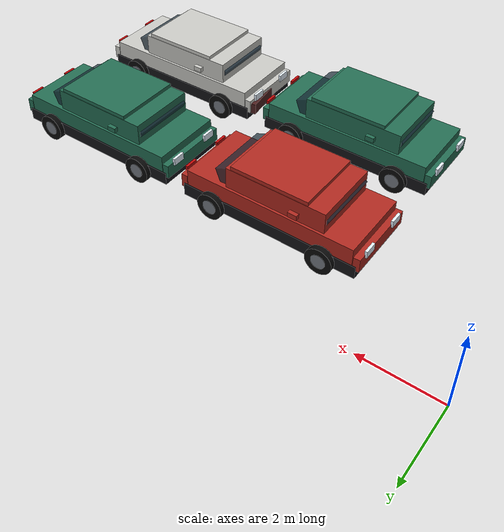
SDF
<sdf version="1.7">
 <world name="ev_car_carrier_deck_world">
  <model name="ev_04">
   <static>true</static>
   <pose>5.0000 -5.4000 0.2000 0.0000 0.0000 0.0000</pose>
   <link name="vehicle">
    <collision name="chassis_collision">
     <pose>0.0000 0.0000 0.4800 0.0000 0.0000 0.0000</pose>
     <geometry><box><size>4.45 1.86 0.32</size></box></geometry>
    </collision>
    <visual name="chassis_visual">
     <pose>0.0000 0.0000 0.4800 0.0000 0.0000 0.0000</pose>
     <geometry><box><size>4.45 1.86 0.32</size></box></geometry>
     <material><ambient>0.08 0.08 0.09 1</ambient><diffuse>0.08 0.08 0.09 1</diffuse></material>
    </visual>
    <collision name="lower_body_collision">
     <pose>0.0000 0.0000 0.7800 0.0000 0.0000 0.0000</pose>
     <geometry><box><size>4.25 1.82 0.55</size></box></geometry>
    </collision>
    <visual name="lower_body_visual">
     <pose>0.0000 0.0000 0.7800 0.0000 0.0000 0.0000</pose>
     <geometry><box><size>4.25 1.82 0.55</size></box></geometry>
     <material><ambient>0.14 0.42 0.32 1</ambient><diffuse>0.14 0.42 0.32 1</diffuse></material>
    </visual>
    <collision name="cabin_collision">
     <pose>-0.1500 0.0000 1.2500 0.0000 0.0000 0.0000</pose>
     <geometry><box><size>2.5 1.7 0.65</size></box></geometry>
    </collision>
    <visual name="cabin_visual">
     <pose>-0.1500 0.0000 1.2500 0.0000 0.0000 0.0000</pose>
     <geometry><box><size>2.5 1.7 0.65</size></box></geometry>
     <material><ambient>0.14 0.42 0.32 1</ambient><diffuse>0.14 0.42 0.32 1</diffuse></material>
    </visual>
    <visual name="windshield_visual">
     <pose>-1.0500 0.0000 1.3000 0.0000 -0.4000 0.0000</pose>
     <geometry><box><size>0.7 1.56 0.42</size></box></geometry>
     <material><ambient>0.1 0.17 0.22 0.75</ambient><diffuse>0.1 0.17 0.22 0.75</diffuse></material>
    </visual>
    <visual name="rear_glass_visual">
     <pose>1.1000 0.0000 1.2800 0.0000 0.3800 0.0000</pose>
     <geometry><box><size>0.55 1.56 0.4</size></box></geometry>
     <material><ambient>0.1 0.17 0.22 0.75</ambient><diffuse>0.1 0.17 0.22 0.75</diffuse></material>
    </visual>
    <collision name="roof_collision">
     <pose>0.0000 0.0000 1.6200 0.0000 0.0000 0.0000</pose>
     <geometry><box><size>1.95 1.68 0.1</size></box></geometry>
    </collision>
    <visual name="roof_visual">
     <pose>0.0000 0.0000 1.6200 0.0000 0.0000 0.0000</pose>
     <geometry><box><size>1.95 1.68 0.1</size></box></geometry>
     <material><ambient>0.14 0.42 0.32 1</ambient><diffuse>0.14 0.42 0.32 1</diffuse></material>
    </visual>
    <collision name="battery_pack_collision">
     <pose>0.1000 0.0000 0.3000 0.0000 0.0000 0.0000</pose>
     <geometry><box><size>2.75 1.45 0.16</size></box></geometry>
    </collision>
    <visual name="battery_pack_visual">
     <pose>0.1000 0.0000 0.3000 0.0000 0.0000 0.0000</pose>
     <geometry><box><size>2.75 1.45 0.16</size></box></geometry>
     <material><ambient>0.16 0.18 0.19 1</ambient><diffuse>0.16 0.18 0.19 1</diffuse></material>
    </visual>
    <collision name="front_bumper_collision">
     <pose>-2.2200 0.0000 0.7000 0.0000 0.0000 0.0000</pose>
     <geometry><box><size>0.16 1.82 0.34</size></box></geometry>
    </collision>
    <visual name="front_bumper_visual">
     <pose>-2.2200 0.0000 0.7000 0.0000 0.0000 0.0000</pose>
     <geometry><box><size>0.16 1.82 0.34</size></box></geometry>
     <material><ambient>0.14 0.42 0.32 1</ambient><diffuse>0.14 0.42 0.32 1</diffuse></material>
    </visual>
    <collision name="rear_bumper_collision">
     <pose>2.2200 0.0000 0.7000 0.0000 0.0000 0.0000</pose>
     <geometry><box><size>0.16 1.82 0.34</size></box></geometry>
    </collision>
    <visual name="rear_bumper_visual">
     <pose>2.2200 0.0000 0.7000 0.0000 0.0000 0.0000</pose>
     <geometry><box><size>0.16 1.82 0.34</size></box></geometry>
     <material><ambient>0.14 0.42 0.32 1</ambient><diffuse>0.14 0.42 0.32 1</diffuse></material>
    </visual>
    <collision name="wheel_0_0_collision">
     <pose>-1.4200 -0.9600 0.4300 1.5708 0.0000 0.0000</pose>
     <geometry><cylinder><radius>0.33</radius><length>0.2</length></cylinder></geometry>
    </collision>
    <visual name="wheel_0_0_visual">
     <pose>-1.4200 -0.9600 0.4300 1.5708 0.0000 0.0000</pose>
     <geometry><cylinder><radius>0.33</radius><length>0.2</length></cylinder></geometry>
     <material><ambient>0.035 0.035 0.035 1</ambient><diffuse>0.035 0.035 0.035 1</diffuse></material>
    </visual>
    <visual name="rim_0_0_visual">
     <pose>-1.4200 -0.9600 0.4300 1.5708 0.0000 0.0000</pose>
     <geometry><cylinder><radius>0.18</radius><length>0.205</length></cylinder></geometry>
     <material><ambient>0.45 0.47 0.5 1</ambient><diffuse>0.45 0.47 0.5 1</diffuse></material>
    </visual>
    <collision name="wheel_0_1_collision">
     <pose>-1.4200 0.9600 0.4300 1.5708 0.0000 0.0000</pose>
     <geometry><cylinder><radius>0.33</radius><length>0.2</length></cylinder></geometry>
    </collision>
    <visual name="wheel_0_1_visual">
     <pose>-1.4200 0.9600 0.4300 1.5708 0.0000 0.0000</pose>
     <geometry><cylinder><radius>0.33</radius><length>0.2</length></cylinder></geometry>
     <material><ambient>0.035 0.035 0.035 1</ambient><diffuse>0.035 0.035 0.035 1</diffuse></material>
    </visual>
    <visual name="rim_0_1_visual">
     <pose>-1.4200 0.9600 0.4300 1.5708 0.0000 0.0000</pose>
     <geometry><cylinder><radius>0.18</radius><length>0.205</length></cylinder></geometry>
     <material><ambient>0.45 0.47 0.5 1</ambient><diffuse>0.45 0.47 0.5 1</diffuse></material>
    </visual>
    <collision name="wheel_1_0_collision">
     <pose>1.4200 -0.9600 0.4300 1.5708 0.0000 0.0000</pose>
     <geometry><cylinder><radius>0.33</radius><length>0.2</length></cylinder></geometry>
    </collision>
    <visual name="wheel_1_0_visual">
     <pose>1.4200 -0.9600 0.4300 1.5708 0.0000 0.0000</pose>
     <geometry><cylinder><radius>0.33</radius><length>0.2</length></cylinder></geometry>
     <material><ambient>0.035 0.035 0.035 1</ambient><diffuse>0.035 0.035 0.035 1</diffuse></material>
    </visual>
    <visual name="rim_1_0_visual">
     <pose>1.4200 -0.9600 0.4300 1.5708 0.0000 0.0000</pose>
     <geometry><cylinder><radius>0.18</radius><length>0.205</length></cylinder></geometry>
     <material><ambient>0.45 0.47 0.5 1</ambient><diffuse>0.45 0.47 0.5 1</diffuse></material>
    </visual>
    <collision name="wheel_1_1_collision">
     <pose>1.4200 0.9600 0.4300 1.5708 0.0000 0.0000</pose>
     <geometry><cylinder><radius>0.33</radius><length>0.2</length></cylinder></geometry>
    </collision>
    <visual name="wheel_1_1_visual">
     <pose>1.4200 0.9600 0.4300 1.5708 0.0000 0.0000</pose>
     <geometry><cylinder><radius>0.33</radius><length>0.2</length></cylinder></geometry>
     <material><ambient>0.035 0.035 0.035 1</ambient><diffuse>0.035 0.035 0.035 1</diffuse></material>
    </visual>
    <visual name="rim_1_1_visual">
     <pose>1.4200 0.9600 0.4300 1.5708 0.0000 0.0000</pose>
     <geometry><cylinder><radius>0.18</radius><length>0.205</length></cylinder></geometry>
     <material><ambient>0.45 0.47 0.5 1</ambient><diffuse>0.45 0.47 0.5 1</diffuse></material>
    </visual>
    <visual name="headlight_l_visual">
     <pose>-2.3100 -0.5500 0.8800 0.0000 0.0000 0.0000</pose>
     <geometry><box><size>0.06 0.32 0.18</size></box></geometry>
     <material><ambient>0.9 0.95 1.0 1</ambient><diffuse>0.9 0.95 1.0 1</diffuse></material>
    </visual>
    <visual name="headlight_r_visual">
     <pose>-2.3100 0.5500 0.8800 0.0000 0.0000 0.0000</pose>
     <geometry><box><size>0.06 0.32 0.18</size></box></geometry>
     <material><ambient>0.9 0.95 1.0 1</ambient><diffuse>0.9 0.95 1.0 1</diffuse></material>
    </visual>
    <visual name="taillight_l_visual">
     <pose>2.3100 -0.5500 0.8600 0.0000 0.0000 0.0000</pose>
     <geometry><box><size>0.06 0.32 0.17</size></box></geometry>
     <material><ambient>0.75 0.03 0.03 1</ambient><diffuse>0.75 0.03 0.03 1</diffuse></material>
    </visual>
    <visual name="taillight_r_visual">
     <pose>2.3100 0.5500 0.8600 0.0000 0.0000 0.0000</pose>
     <geometry><box><size>0.06 0.32 0.17</size></box></geometry>
     <material><ambient>0.75 0.03 0.03 1</ambient><diffuse>0.75 0.03 0.03 1</diffuse></material>
    </visual>
    <collision name="mirror_l_collision">
     <pose>-0.7200 -0.9800 1.3000 0.0000 0.0000 0.0000</pose>
     <geometry><box><size>0.22 0.1 0.12</size></box></geometry>
    </collision>
    <visual name="mirror_l_visual">
     <pose>-0.7200 -0.9800 1.3000 0.0000 0.0000 0.0000</pose>
     <geometry><box><size>0.22 0.1 0.12</size></box></geometry>
     <material><ambient>0.14 0.42 0.32 1</ambient><diffuse>0.14 0.42 0.32 1</diffuse></material>
    </visual>
    <collision name="mirror_r_collision">
     <pose>-0.7200 0.9800 1.3000 0.0000 0.0000 0.0000</pose>
     <geometry><box><size>0.22 0.1 0.12</size></box></geometry>
    </collision>
    <visual name="mirror_r_visual">
     <pose>-0.7200 0.9800 1.3000 0.0000 0.0000 0.0000</pose>
     <geometry><box><size>0.22 0.1 0.12</size></box></geometry>
     <material><ambient>0.14 0.42 0.32 1</ambient><diffuse>0.14 0.42 0.32 1</diffuse></material>
    </visual>
   </link>
  </model>
  <model name="ev_05">
   <static>true</static>
   <pose>10.0000 -5.4000 0.2000 0.0000 0.0000 0.0000</pose>
   <link name="vehicle">
    <collision name="chassis_collision">
     <pose>0.0000 0.0000 0.4800 0.0000 0.0000 0.0000</pose>
     <geometry><box><size>4.45 1.86 0.32</size></box></geometry>
    </collision>
    <visual name="chassis_visual">
     <pose>0.0000 0.0000 0.4800 0.0000 0.0000 0.0000</pose>
     <geometry><box><size>4.45 1.86 0.32</size></box></geometry>
     <material><ambient>0.08 0.08 0.09 1</ambient><diffuse>0.08 0.08 0.09 1</diffuse></material>
    </visual>
    <collision name="lower_body_collision">
     <pose>0.0000 0.0000 0.7800 0.0000 0.0000 0.0000</pose>
     <geometry><box><size>4.25 1.82 0.55</size></box></geometry>
    </collision>
    <visual name="lower_body_visual">
     <pose>0.0000 0.0000 0.7800 0.0000 0.0000 0.0000</pose>
     <geometry><box><size>4.25 1.82 0.55</size></box></geometry>
     <material><ambient>0.78 0.78 0.76 1</ambient><diffuse>0.78 0.78 0.76 1</diffuse></material>
    </visual>
    <collision name="cabin_collision">
     <pose>-0.1500 0.0000 1.2500 0.0000 0.0000 0.0000</pose>
     <geometry><box><size>2.5 1.7 0.65</size></box></geometry>
    </collision>
    <visual name="cabin_visual">
     <pose>-0.1500 0.0000 1.2500 0.0000 0.0000 0.0000</pose>
     <geometry><box><size>2.5 1.7 0.65</size></box></geometry>
     <material><ambient>0.78 0.78 0.76 1</ambient><diffuse>0.78 0.78 0.76 1</diffuse></material>
    </visual>
    <visual name="windshield_visual">
     <pose>-1.0500 0.0000 1.3000 0.0000 -0.4000 0.0000</pose>
     <geometry><box><size>0.7 1.56 0.42</size></box></geometry>
     <material><ambient>0.1 0.17 0.22 0.75</ambient><diffuse>0.1 0.17 0.22 0.75</diffuse></material>
    </visual>
    <visual name="rear_glass_visual">
     <pose>1.1000 0.0000 1.2800 0.0000 0.3800 0.0000</pose>
     <geometry><box><size>0.55 1.56 0.4</size></box></geometry>
     <material><ambient>0.1 0.17 0.22 0.75</ambient><diffuse>0.1 0.17 0.22 0.75</diffuse></material>
    </visual>
    <collision name="roof_collision">
     <pose>0.0000 0.0000 1.6200 0.0000 0.0000 0.0000</pose>
     <geometry><box><size>1.95 1.68 0.1</size></box></geometry>
    </collision>
    <visual name="roof_visual">
     <pose>0.0000 0.0000 1.6200 0.0000 0.0000 0.0000</pose>
     <geometry><box><size>1.95 1.68 0.1</size></box></geometry>
     <material><ambient>0.78 0.78 0.76 1</ambient><diffuse>0.78 0.78 0.76 1</diffuse></material>
    </visual>
    <collision name="battery_pack_collision">
     <pose>0.1000 0.0000 0.3000 0.0000 0.0000 0.0000</pose>
     <geometry><box><size>2.75 1.45 0.16</size></box></geometry>
    </collision>
    <visual name="battery_pack_visual">
     <pose>0.1000 0.0000 0.3000 0.0000 0.0000 0.0000</pose>
     <geometry><box><size>2.75 1.45 0.16</size></box></geometry>
     <material><ambient>0.16 0.18 0.19 1</ambient><diffuse>0.16 0.18 0.19 1</diffuse></material>
    </visual>
    <collision name="front_bumper_collision">
     <pose>-2.2200 0.0000 0.7000 0.0000 0.0000 0.0000</pose>
     <geometry><box><size>0.16 1.82 0.34</size></box></geometry>
    </collision>
    <visual name="front_bumper_visual">
     <pose>-2.2200 0.0000 0.7000 0.0000 0.0000 0.0000</pose>
     <geometry><box><size>0.16 1.82 0.34</size></box></geometry>
     <material><ambient>0.78 0.78 0.76 1</ambient><diffuse>0.78 0.78 0.76 1</diffuse></material>
    </visual>
    <collision name="rear_bumper_collision">
     <pose>2.2200 0.0000 0.7000 0.0000 0.0000 0.0000</pose>
     <geometry><box><size>0.16 1.82 0.34</size></box></geometry>
    </collision>
    <visual name="rear_bumper_visual">
     <pose>2.2200 0.0000 0.7000 0.0000 0.0000 0.0000</pose>
     <geometry><box><size>0.16 1.82 0.34</size></box></geometry>
     <material><ambient>0.78 0.78 0.76 1</ambient><diffuse>0.78 0.78 0.76 1</diffuse></material>
    </visual>
    <collision name="wheel_0_0_collision">
     <pose>-1.4200 -0.9600 0.4300 1.5708 0.0000 0.0000</pose>
     <geometry><cylinder><radius>0.33</radius><length>0.2</length></cylinder></geometry>
    </collision>
    <visual name="wheel_0_0_visual">
     <pose>-1.4200 -0.9600 0.4300 1.5708 0.0000 0.0000</pose>
     <geometry><cylinder><radius>0.33</radius><length>0.2</length></cylinder></geometry>
     <material><ambient>0.035 0.035 0.035 1</ambient><diffuse>0.035 0.035 0.035 1</diffuse></material>
    </visual>
    <visual name="rim_0_0_visual">
     <pose>-1.4200 -0.9600 0.4300 1.5708 0.0000 0.0000</pose>
     <geometry><cylinder><radius>0.18</radius><length>0.205</length></cylinder></geometry>
     <material><ambient>0.45 0.47 0.5 1</ambient><diffuse>0.45 0.47 0.5 1</diffuse></material>
    </visual>
    <collision name="wheel_0_1_collision">
     <pose>-1.4200 0.9600 0.4300 1.5708 0.0000 0.0000</pose>
     <geometry><cylinder><radius>0.33</radius><length>0.2</length></cylinder></geometry>
    </collision>
    <visual name="wheel_0_1_visual">
     <pose>-1.4200 0.9600 0.4300 1.5708 0.0000 0.0000</pose>
     <geometry><cylinder><radius>0.33</radius><length>0.2</length></cylinder></geometry>
     <material><ambient>0.035 0.035 0.035 1</ambient><diffuse>0.035 0.035 0.035 1</diffuse></material>
    </visual>
    <visual name="rim_0_1_visual">
     <pose>-1.4200 0.9600 0.4300 1.5708 0.0000 0.0000</pose>
     <geometry><cylinder><radius>0.18</radius><length>0.205</length></cylinder></geometry>
     <material><ambient>0.45 0.47 0.5 1</ambient><diffuse>0.45 0.47 0.5 1</diffuse></material>
    </visual>
    <collision name="wheel_1_0_collision">
     <pose>1.4200 -0.9600 0.4300 1.5708 0.0000 0.0000</pose>
     <geometry><cylinder><radius>0.33</radius><length>0.2</length></cylinder></geometry>
    </collision>
    <visual name="wheel_1_0_visual">
     <pose>1.4200 -0.9600 0.4300 1.5708 0.0000 0.0000</pose>
     <geometry><cylinder><radius>0.33</radius><length>0.2</length></cylinder></geometry>
     <material><ambient>0.035 0.035 0.035 1</ambient><diffuse>0.035 0.035 0.035 1</diffuse></material>
    </visual>
    <visual name="rim_1_0_visual">
     <pose>1.4200 -0.9600 0.4300 1.5708 0.0000 0.0000</pose>
     <geometry><cylinder><radius>0.18</radius><length>0.205</length></cylinder></geometry>
     <material><ambient>0.45 0.47 0.5 1</ambient><diffuse>0.45 0.47 0.5 1</diffuse></material>
    </visual>
    <collision name="wheel_1_1_collision">
     <pose>1.4200 0.9600 0.4300 1.5708 0.0000 0.0000</pose>
     <geometry><cylinder><radius>0.33</radius><length>0.2</length></cylinder></geometry>
    </collision>
    <visual name="wheel_1_1_visual">
     <pose>1.4200 0.9600 0.4300 1.5708 0.0000 0.0000</pose>
     <geometry><cylinder><radius>0.33</radius><length>0.2</length></cylinder></geometry>
     <material><ambient>0.035 0.035 0.035 1</ambient><diffuse>0.035 0.035 0.035 1</diffuse></material>
    </visual>
    <visual name="rim_1_1_visual">
     <pose>1.4200 0.9600 0.4300 1.5708 0.0000 0.0000</pose>
     <geometry><cylinder><radius>0.18</radius><length>0.205</length></cylinder></geometry>
     <material><ambient>0.45 0.47 0.5 1</ambient><diffuse>0.45 0.47 0.5 1</diffuse></material>
    </visual>
    <visual name="headlight_l_visual">
     <pose>-2.3100 -0.5500 0.8800 0.0000 0.0000 0.0000</pose>
     <geometry><box><size>0.06 0.32 0.18</size></box></geometry>
     <material><ambient>0.9 0.95 1.0 1</ambient><diffuse>0.9 0.95 1.0 1</diffuse></material>
    </visual>
    <visual name="headlight_r_visual">
     <pose>-2.3100 0.5500 0.8800 0.0000 0.0000 0.0000</pose>
     <geometry><box><size>0.06 0.32 0.18</size></box></geometry>
     <material><ambient>0.9 0.95 1.0 1</ambient><diffuse>0.9 0.95 1.0 1</diffuse></material>
    </visual>
    <visual name="taillight_l_visual">
     <pose>2.3100 -0.5500 0.8600 0.0000 0.0000 0.0000</pose>
     <geometry><box><size>0.06 0.32 0.17</size></box></geometry>
     <material><ambient>0.75 0.03 0.03 1</ambient><diffuse>0.75 0.03 0.03 1</diffuse></material>
    </visual>
    <visual name="taillight_r_visual">
     <pose>2.3100 0.5500 0.8600 0.0000 0.0000 0.0000</pose>
     <geometry><box><size>0.06 0.32 0.17</size></box></geometry>
     <material><ambient>0.75 0.03 0.03 1</ambient><diffuse>0.75 0.03 0.03 1</diffuse></material>
    </visual>
    <collision name="mirror_l_collision">
     <pose>-0.7200 -0.9800 1.3000 0.0000 0.0000 0.0000</pose>
     <geometry><box><size>0.22 0.1 0.12</size></box></geometry>
    </collision>
    <visual name="mirror_l_visual">
     <pose>-0.7200 -0.9800 1.3000 0.0000 0.0000 0.0000</pose>
     <geometry><box><size>0.22 0.1 0.12</size></box></geometry>
     <material><ambient>0.78 0.78 0.76 1</ambient><diffuse>0.78 0.78 0.76 1</diffuse></material>
    </visual>
    <collision name="mirror_r_collision">
     <pose>-0.7200 0.9800 1.3000 0.0000 0.0000 0.0000</pose>
     <geometry><box><size>0.22 0.1 0.12</size></box></geometry>
    </collision>
    <visual name="mirror_r_visual">
     <pose>-0.7200 0.9800 1.3000 0.0000 0.0000 0.0000</pose>
     <geometry><box><size>0.22 0.1 0.12</size></box></geometry>
     <material><ambient>0.78 0.78 0.76 1</ambient><diffuse>0.78 0.78 0.76 1</diffuse></material>
    </visual>
    <collision name="damaged_bumper_collision">
     <pose>-2.2500 0.1800 0.6400 0.0000 0.0000 0.1300</pose>
     <geometry><box><size>0.16 1.35 0.28</size></box></geometry>
    </collision>
    <visual name="damaged_bumper_visual">
     <pose>-2.2500 0.1800 0.6400 0.0000 0.0000 0.1300</pose>
     <geometry><box><size>0.16 1.35 0.28</size></box></geometry>
     <material><ambient>0.3 0.12 0.12 1</ambient><diffuse>0.3 0.12 0.12 1</diffuse></material>
    </visual>
   </link>
  </model>
  <model name="ev_09">
   <static>true</static>
   <pose>5.0000 -2.2000 0.2000 0.0000 0.0000 0.0000</pose>
   <link name="vehicle">
    <collision name="chassis_collision">
     <pose>0.0000 0.0000 0.4800 0.0000 0.0000 0.0000</pose>
     <geometry><box><size>4.45 1.86 0.32</size></box></geometry>
    </collision>
    <visual name="chassis_visual">
     <pose>0.0000 0.0000 0.4800 0.0000 0.0000 0.0000</pose>
     <geometry><box><size>4.45 1.86 0.32</size></box></geometry>
     <material><ambient>0.08 0.08 0.09 1</ambient><diffuse>0.08 0.08 0.09 1</diffuse></material>
    </visual>
    <collision name="lower_body_collision">
     <pose>0.0000 0.0000 0.7800 0.0000 0.0000 0.0000</pose>
     <geometry><box><size>4.25 1.82 0.55</size></box></geometry>
    </collision>
    <visual name="lower_body_visual">
     <pose>0.0000 0.0000 0.7800 0.0000 0.0000 0.0000</pose>
     <geometry><box><size>4.25 1.82 0.55</size></box></geometry>
     <material><ambient>0.68 0.16 0.12 1</ambient><diffuse>0.68 0.16 0.12 1</diffuse></material>
    </visual>
    <collision name="cabin_collision">
     <pose>-0.1500 0.0000 1.2500 0.0000 0.0000 0.0000</pose>
     <geometry><box><size>2.5 1.7 0.65</size></box></geometry>
    </collision>
    <visual name="cabin_visual">
     <pose>-0.1500 0.0000 1.2500 0.0000 0.0000 0.0000</pose>
     <geometry><box><size>2.5 1.7 0.65</size></box></geometry>
     <material><ambient>0.68 0.16 0.12 1</ambient><diffuse>0.68 0.16 0.12 1</diffuse></material>
    </visual>
    <visual name="windshield_visual">
     <pose>-1.0500 0.0000 1.3000 0.0000 -0.4000 0.0000</pose>
     <geometry><box><size>0.7 1.56 0.42</size></box></geometry>
     <material><ambient>0.1 0.17 0.22 0.75</ambient><diffuse>0.1 0.17 0.22 0.75</diffuse></material>
    </visual>
    <visual name="rear_glass_visual">
     <pose>1.1000 0.0000 1.2800 0.0000 0.3800 0.0000</pose>
     <geometry><box><size>0.55 1.56 0.4</size></box></geometry>
     <material><ambient>0.1 0.17 0.22 0.75</ambient><diffuse>0.1 0.17 0.22 0.75</diffuse></material>
    </visual>
    <collision name="roof_collision">
     <pose>0.0000 0.0000 1.6200 0.0000 0.0000 0.0000</pose>
     <geometry><box><size>1.95 1.68 0.1</size></box></geometry>
    </collision>
    <visual name="roof_visual">
     <pose>0.0000 0.0000 1.6200 0.0000 0.0000 0.0000</pose>
     <geometry><box><size>1.95 1.68 0.1</size></box></geometry>
     <material><ambient>0.68 0.16 0.12 1</ambient><diffuse>0.68 0.16 0.12 1</diffuse></material>
    </visual>
    <collision name="battery_pack_collision">
     <pose>0.1000 0.0000 0.3000 0.0000 0.0000 0.0000</pose>
     <geometry><box><size>2.75 1.45 0.16</size></box></geometry>
    </collision>
    <visual name="battery_pack_visual">
     <pose>0.1000 0.0000 0.3000 0.0000 0.0000 0.0000</pose>
     <geometry><box><size>2.75 1.45 0.16</size></box></geometry>
     <material><ambient>0.16 0.18 0.19 1</ambient><diffuse>0.16 0.18 0.19 1</diffuse></material>
    </visual>
    <collision name="front_bumper_collision">
     <pose>-2.2200 0.0000 0.7000 0.0000 0.0000 0.0000</pose>
     <geometry><box><size>0.16 1.82 0.34</size></box></geometry>
    </collision>
    <visual name="front_bumper_visual">
     <pose>-2.2200 0.0000 0.7000 0.0000 0.0000 0.0000</pose>
     <geometry><box><size>0.16 1.82 0.34</size></box></geometry>
     <material><ambient>0.68 0.16 0.12 1</ambient><diffuse>0.68 0.16 0.12 1</diffuse></material>
    </visual>
    <collision name="rear_bumper_collision">
     <pose>2.2200 0.0000 0.7000 0.0000 0.0000 0.0000</pose>
     <geometry><box><size>0.16 1.82 0.34</size></box></geometry>
    </collision>
    <visual name="rear_bumper_visual">
     <pose>2.2200 0.0000 0.7000 0.0000 0.0000 0.0000</pose>
     <geometry><box><size>0.16 1.82 0.34</size></box></geometry>
     <material><ambient>0.68 0.16 0.12 1</ambient><diffuse>0.68 0.16 0.12 1</diffuse></material>
    </visual>
    <collision name="wheel_0_0_collision">
     <pose>-1.4200 -0.9600 0.4300 1.5708 0.0000 0.0000</pose>
     <geometry><cylinder><radius>0.33</radius><length>0.2</length></cylinder></geometry>
    </collision>
    <visual name="wheel_0_0_visual">
     <pose>-1.4200 -0.9600 0.4300 1.5708 0.0000 0.0000</pose>
     <geometry><cylinder><radius>0.33</radius><length>0.2</length></cylinder></geometry>
     <material><ambient>0.035 0.035 0.035 1</ambient><diffuse>0.035 0.035 0.035 1</diffuse></material>
    </visual>
    <visual name="rim_0_0_visual">
     <pose>-1.4200 -0.9600 0.4300 1.5708 0.0000 0.0000</pose>
     <geometry><cylinder><radius>0.18</radius><length>0.205</length></cylinder></geometry>
     <material><ambient>0.45 0.47 0.5 1</ambient><diffuse>0.45 0.47 0.5 1</diffuse></material>
    </visual>
    <collision name="wheel_0_1_collision">
     <pose>-1.4200 0.9600 0.4300 1.5708 0.0000 0.0000</pose>
     <geometry><cylinder><radius>0.33</radius><length>0.2</length></cylinder></geometry>
    </collision>
    <visual name="wheel_0_1_visual">
     <pose>-1.4200 0.9600 0.4300 1.5708 0.0000 0.0000</pose>
     <geometry><cylinder><radius>0.33</radius><length>0.2</length></cylinder></geometry>
     <material><ambient>0.035 0.035 0.035 1</ambient><diffuse>0.035 0.035 0.035 1</diffuse></material>
    </visual>
    <visual name="rim_0_1_visual">
     <pose>-1.4200 0.9600 0.4300 1.5708 0.0000 0.0000</pose>
     <geometry><cylinder><radius>0.18</radius><length>0.205</length></cylinder></geometry>
     <material><ambient>0.45 0.47 0.5 1</ambient><diffuse>0.45 0.47 0.5 1</diffuse></material>
    </visual>
    <collision name="wheel_1_0_collision">
     <pose>1.4200 -0.9600 0.4300 1.5708 0.0000 0.0000</pose>
     <geometry><cylinder><radius>0.33</radius><length>0.2</length></cylinder></geometry>
    </collision>
    <visual name="wheel_1_0_visual">
     <pose>1.4200 -0.9600 0.4300 1.5708 0.0000 0.0000</pose>
     <geometry><cylinder><radius>0.33</radius><length>0.2</length></cylinder></geometry>
     <material><ambient>0.035 0.035 0.035 1</ambient><diffuse>0.035 0.035 0.035 1</diffuse></material>
    </visual>
    <visual name="rim_1_0_visual">
     <pose>1.4200 -0.9600 0.4300 1.5708 0.0000 0.0000</pose>
     <geometry><cylinder><radius>0.18</radius><length>0.205</length></cylinder></geometry>
     <material><ambient>0.45 0.47 0.5 1</ambient><diffuse>0.45 0.47 0.5 1</diffuse></material>
    </visual>
    <collision name="wheel_1_1_collision">
     <pose>1.4200 0.9600 0.4300 1.5708 0.0000 0.0000</pose>
     <geometry><cylinder><radius>0.33</radius><length>0.2</length></cylinder></geometry>
    </collision>
    <visual name="wheel_1_1_visual">
     <pose>1.4200 0.9600 0.4300 1.5708 0.0000 0.0000</pose>
     <geometry><cylinder><radius>0.33</radius><length>0.2</length></cylinder></geometry>
     <material><ambient>0.035 0.035 0.035 1</ambient><diffuse>0.035 0.035 0.035 1</diffuse></material>
    </visual>
    <visual name="rim_1_1_visual">
     <pose>1.4200 0.9600 0.4300 1.5708 0.0000 0.0000</pose>
     <geometry><cylinder><radius>0.18</radius><length>0.205</length></cylinder></geometry>
     <material><ambient>0.45 0.47 0.5 1</ambient><diffuse>0.45 0.47 0.5 1</diffuse></material>
    </visual>
    <visual name="headlight_l_visual">
     <pose>-2.3100 -0.5500 0.8800 0.0000 0.0000 0.0000</pose>
     <geometry><box><size>0.06 0.32 0.18</size></box></geometry>
     <material><ambient>0.9 0.95 1.0 1</ambient><diffuse>0.9 0.95 1.0 1</diffuse></material>
    </visual>
    <visual name="headlight_r_visual">
     <pose>-2.3100 0.5500 0.8800 0.0000 0.0000 0.0000</pose>
     <geometry><box><size>0.06 0.32 0.18</size></box></geometry>
     <material><ambient>0.9 0.95 1.0 1</ambient><diffuse>0.9 0.95 1.0 1</diffuse></material>
    </visual>
    <visual name="taillight_l_visual">
     <pose>2.3100 -0.5500 0.8600 0.0000 0.0000 0.0000</pose>
     <geometry><box><size>0.06 0.32 0.17</size></box></geometry>
     <material><ambient>0.75 0.03 0.03 1</ambient><diffuse>0.75 0.03 0.03 1</diffuse></material>
    </visual>
    <visual name="taillight_r_visual">
     <pose>2.3100 0.5500 0.8600 0.0000 0.0000 0.0000</pose>
     <geometry><box><size>0.06 0.32 0.17</size></box></geometry>
     <material><ambient>0.75 0.03 0.03 1</ambient><diffuse>0.75 0.03 0.03 1</diffuse></material>
    </visual>
    <collision name="mirror_l_collision">
     <pose>-0.7200 -0.9800 1.3000 0.0000 0.0000 0.0000</pose>
     <geometry><box><size>0.22 0.1 0.12</size></box></geometry>
    </collision>
    <visual name="mirror_l_visual">
     <pose>-0.7200 -0.9800 1.3000 0.0000 0.0000 0.0000</pose>
     <geometry><box><size>0.22 0.1 0.12</size></box></geometry>
     <material><ambient>0.68 0.16 0.12 1</ambient><diffuse>0.68 0.16 0.12 1</diffuse></material>
    </visual>
    <collision name="mirror_r_collision">
     <pose>-0.7200 0.9800 1.3000 0.0000 0.0000 0.0000</pose>
     <geometry><box><size>0.22 0.1 0.12</size></box></geometry>
    </collision>
    <visual name="mirror_r_visual">
     <pose>-0.7200 0.9800 1.3000 0.0000 0.0000 0.0000</pose>
     <geometry><box><size>0.22 0.1 0.12</size></box></geometry>
     <material><ambient>0.68 0.16 0.12 1</ambient><diffuse>0.68 0.16 0.12 1</diffuse></material>
    </visual>
   </link>
  </model>
  <model name="ev_10">
   <static>true</static>
   <pose>10.0000 -2.2000 0.2000 0.0000 0.0000 0.0000</pose>
   <link name="vehicle">
    <collision name="chassis_collision">
     <pose>0.0000 0.0000 0.4800 0.0000 0.0000 0.0000</pose>
     <geometry><box><size>4.45 1.86 0.32</size></box></geometry>
    </collision>
    <visual name="chassis_visual">
     <pose>0.0000 0.0000 0.4800 0.0000 0.0000 0.0000</pose>
     <geometry><box><size>4.45 1.86 0.32</size></box></geometry>
     <material><ambient>0.08 0.08 0.09 1</ambient><diffuse>0.08 0.08 0.09 1</diffuse></material>
    </visual>
    <collision name="lower_body_collision">
     <pose>0.0000 0.0000 0.7800 0.0000 0.0000 0.0000</pose>
     <geometry><box><size>4.25 1.82 0.55</size></box></geometry>
    </collision>
    <visual name="lower_body_visual">
     <pose>0.0000 0.0000 0.7800 0.0000 0.0000 0.0000</pose>
     <geometry><box><size>4.25 1.82 0.55</size></box></geometry>
     <material><ambient>0.14 0.42 0.32 1</ambient><diffuse>0.14 0.42 0.32 1</diffuse></material>
    </visual>
    <collision name="cabin_collision">
     <pose>-0.1500 0.0000 1.2500 0.0000 0.0000 0.0000</pose>
     <geometry><box><size>2.5 1.7 0.65</size></box></geometry>
    </collision>
    <visual name="cabin_visual">
     <pose>-0.1500 0.0000 1.2500 0.0000 0.0000 0.0000</pose>
     <geometry><box><size>2.5 1.7 0.65</size></box></geometry>
     <material><ambient>0.14 0.42 0.32 1</ambient><diffuse>0.14 0.42 0.32 1</diffuse></material>
    </visual>
    <visual name="windshield_visual">
     <pose>-1.0500 0.0000 1.3000 0.0000 -0.4000 0.0000</pose>
     <geometry><box><size>0.7 1.56 0.42</size></box></geometry>
     <material><ambient>0.1 0.17 0.22 0.75</ambient><diffuse>0.1 0.17 0.22 0.75</diffuse></material>
    </visual>
    <visual name="rear_glass_visual">
     <pose>1.1000 0.0000 1.2800 0.0000 0.3800 0.0000</pose>
     <geometry><box><size>0.55 1.56 0.4</size></box></geometry>
     <material><ambient>0.1 0.17 0.22 0.75</ambient><diffuse>0.1 0.17 0.22 0.75</diffuse></material>
    </visual>
    <collision name="roof_collision">
     <pose>0.0000 0.0000 1.6200 0.0000 0.0000 0.0000</pose>
     <geometry><box><size>1.95 1.68 0.1</size></box></geometry>
    </collision>
    <visual name="roof_visual">
     <pose>0.0000 0.0000 1.6200 0.0000 0.0000 0.0000</pose>
     <geometry><box><size>1.95 1.68 0.1</size></box></geometry>
     <material><ambient>0.14 0.42 0.32 1</ambient><diffuse>0.14 0.42 0.32 1</diffuse></material>
    </visual>
    <collision name="battery_pack_collision">
     <pose>0.1000 0.0000 0.3000 0.0000 0.0000 0.0000</pose>
     <geometry><box><size>2.75 1.45 0.16</size></box></geometry>
    </collision>
    <visual name="battery_pack_visual">
     <pose>0.1000 0.0000 0.3000 0.0000 0.0000 0.0000</pose>
     <geometry><box><size>2.75 1.45 0.16</size></box></geometry>
     <material><ambient>0.16 0.18 0.19 1</ambient><diffuse>0.16 0.18 0.19 1</diffuse></material>
    </visual>
    <collision name="front_bumper_collision">
     <pose>-2.2200 0.0000 0.7000 0.0000 0.0000 0.0000</pose>
     <geometry><box><size>0.16 1.82 0.34</size></box></geometry>
    </collision>
    <visual name="front_bumper_visual">
     <pose>-2.2200 0.0000 0.7000 0.0000 0.0000 0.0000</pose>
     <geometry><box><size>0.16 1.82 0.34</size></box></geometry>
     <material><ambient>0.14 0.42 0.32 1</ambient><diffuse>0.14 0.42 0.32 1</diffuse></material>
    </visual>
    <collision name="rear_bumper_collision">
     <pose>2.2200 0.0000 0.7000 0.0000 0.0000 0.0000</pose>
     <geometry><box><size>0.16 1.82 0.34</size></box></geometry>
    </collision>
    <visual name="rear_bumper_visual">
     <pose>2.2200 0.0000 0.7000 0.0000 0.0000 0.0000</pose>
     <geometry><box><size>0.16 1.82 0.34</size></box></geometry>
     <material><ambient>0.14 0.42 0.32 1</ambient><diffuse>0.14 0.42 0.32 1</diffuse></material>
    </visual>
    <collision name="wheel_0_0_collision">
     <pose>-1.4200 -0.9600 0.4300 1.5708 0.0000 0.0000</pose>
     <geometry><cylinder><radius>0.33</radius><length>0.2</length></cylinder></geometry>
    </collision>
    <visual name="wheel_0_0_visual">
     <pose>-1.4200 -0.9600 0.4300 1.5708 0.0000 0.0000</pose>
     <geometry><cylinder><radius>0.33</radius><length>0.2</length></cylinder></geometry>
     <material><ambient>0.035 0.035 0.035 1</ambient><diffuse>0.035 0.035 0.035 1</diffuse></material>
    </visual>
    <visual name="rim_0_0_visual">
     <pose>-1.4200 -0.9600 0.4300 1.5708 0.0000 0.0000</pose>
     <geometry><cylinder><radius>0.18</radius><length>0.205</length></cylinder></geometry>
     <material><ambient>0.45 0.47 0.5 1</ambient><diffuse>0.45 0.47 0.5 1</diffuse></material>
    </visual>
    <collision name="wheel_0_1_collision">
     <pose>-1.4200 0.9600 0.4300 1.5708 0.0000 0.0000</pose>
     <geometry><cylinder><radius>0.33</radius><length>0.2</length></cylinder></geometry>
    </collision>
    <visual name="wheel_0_1_visual">
     <pose>-1.4200 0.9600 0.4300 1.5708 0.0000 0.0000</pose>
     <geometry><cylinder><radius>0.33</radius><length>0.2</length></cylinder></geometry>
     <material><ambient>0.035 0.035 0.035 1</ambient><diffuse>0.035 0.035 0.035 1</diffuse></material>
    </visual>
    <visual name="rim_0_1_visual">
     <pose>-1.4200 0.9600 0.4300 1.5708 0.0000 0.0000</pose>
     <geometry><cylinder><radius>0.18</radius><length>0.205</length></cylinder></geometry>
     <material><ambient>0.45 0.47 0.5 1</ambient><diffuse>0.45 0.47 0.5 1</diffuse></material>
    </visual>
    <collision name="wheel_1_0_collision">
     <pose>1.4200 -0.9600 0.4300 1.5708 0.0000 0.0000</pose>
     <geometry><cylinder><radius>0.33</radius><length>0.2</length></cylinder></geometry>
    </collision>
    <visual name="wheel_1_0_visual">
     <pose>1.4200 -0.9600 0.4300 1.5708 0.0000 0.0000</pose>
     <geometry><cylinder><radius>0.33</radius><length>0.2</length></cylinder></geometry>
     <material><ambient>0.035 0.035 0.035 1</ambient><diffuse>0.035 0.035 0.035 1</diffuse></material>
    </visual>
    <visual name="rim_1_0_visual">
     <pose>1.4200 -0.9600 0.4300 1.5708 0.0000 0.0000</pose>
     <geometry><cylinder><radius>0.18</radius><length>0.205</length></cylinder></geometry>
     <material><ambient>0.45 0.47 0.5 1</ambient><diffuse>0.45 0.47 0.5 1</diffuse></material>
    </visual>
    <collision name="wheel_1_1_collision">
     <pose>1.4200 0.9600 0.4300 1.5708 0.0000 0.0000</pose>
     <geometry><cylinder><radius>0.33</radius><length>0.2</length></cylinder></geometry>
    </collision>
    <visual name="wheel_1_1_visual">
     <pose>1.4200 0.9600 0.4300 1.5708 0.0000 0.0000</pose>
     <geometry><cylinder><radius>0.33</radius><length>0.2</length></cylinder></geometry>
     <material><ambient>0.035 0.035 0.035 1</ambient><diffuse>0.035 0.035 0.035 1</diffuse></material>
    </visual>
    <visual name="rim_1_1_visual">
     <pose>1.4200 0.9600 0.4300 1.5708 0.0000 0.0000</pose>
     <geometry><cylinder><radius>0.18</radius><length>0.205</length></cylinder></geometry>
     <material><ambient>0.45 0.47 0.5 1</ambient><diffuse>0.45 0.47 0.5 1</diffuse></material>
    </visual>
    <visual name="headlight_l_visual">
     <pose>-2.3100 -0.5500 0.8800 0.0000 0.0000 0.0000</pose>
     <geometry><box><size>0.06 0.32 0.18</size></box></geometry>
     <material><ambient>0.9 0.95 1.0 1</ambient><diffuse>0.9 0.95 1.0 1</diffuse></material>
    </visual>
    <visual name="headlight_r_visual">
     <pose>-2.3100 0.5500 0.8800 0.0000 0.0000 0.0000</pose>
     <geometry><box><size>0.06 0.32 0.18</size></box></geometry>
     <material><ambient>0.9 0.95 1.0 1</ambient><diffuse>0.9 0.95 1.0 1</diffuse></material>
    </visual>
    <visual name="taillight_l_visual">
     <pose>2.3100 -0.5500 0.8600 0.0000 0.0000 0.0000</pose>
     <geometry><box><size>0.06 0.32 0.17</size></box></geometry>
     <material><ambient>0.75 0.03 0.03 1</ambient><diffuse>0.75 0.03 0.03 1</diffuse></material>
    </visual>
    <visual name="taillight_r_visual">
     <pose>2.3100 0.5500 0.8600 0.0000 0.0000 0.0000</pose>
     <geometry><box><size>0.06 0.32 0.17</size></box></geometry>
     <material><ambient>0.75 0.03 0.03 1</ambient><diffuse>0.75 0.03 0.03 1</diffuse></material>
    </visual>
    <collision name="mirror_l_collision">
     <pose>-0.7200 -0.9800 1.3000 0.0000 0.0000 0.0000</pose>
     <geometry><box><size>0.22 0.1 0.12</size></box></geometry>
    </collision>
    <visual name="mirror_l_visual">
     <pose>-0.7200 -0.9800 1.3000 0.0000 0.0000 0.0000</pose>
     <geometry><box><size>0.22 0.1 0.12</size></box></geometry>
     <material><ambient>0.14 0.42 0.32 1</ambient><diffuse>0.14 0.42 0.32 1</diffuse></material>
    </visual>
    <collision name="mirror_r_collision">
     <pose>-0.7200 0.9800 1.3000 0.0000 0.0000 0.0000</pose>
     <geometry><box><size>0.22 0.1 0.12</size></box></geometry>
    </collision>
    <visual name="mirror_r_visual">
     <pose>-0.7200 0.9800 1.3000 0.0000 0.0000 0.0000</pose>
     <geometry><box><size>0.22 0.1 0.12</size></box></geometry>
     <material><ambient>0.14 0.42 0.32 1</ambient><diffuse>0.14 0.42 0.32 1</diffuse></material>
    </visual>
   </link>
  </model>
 </world>
</sdf>
